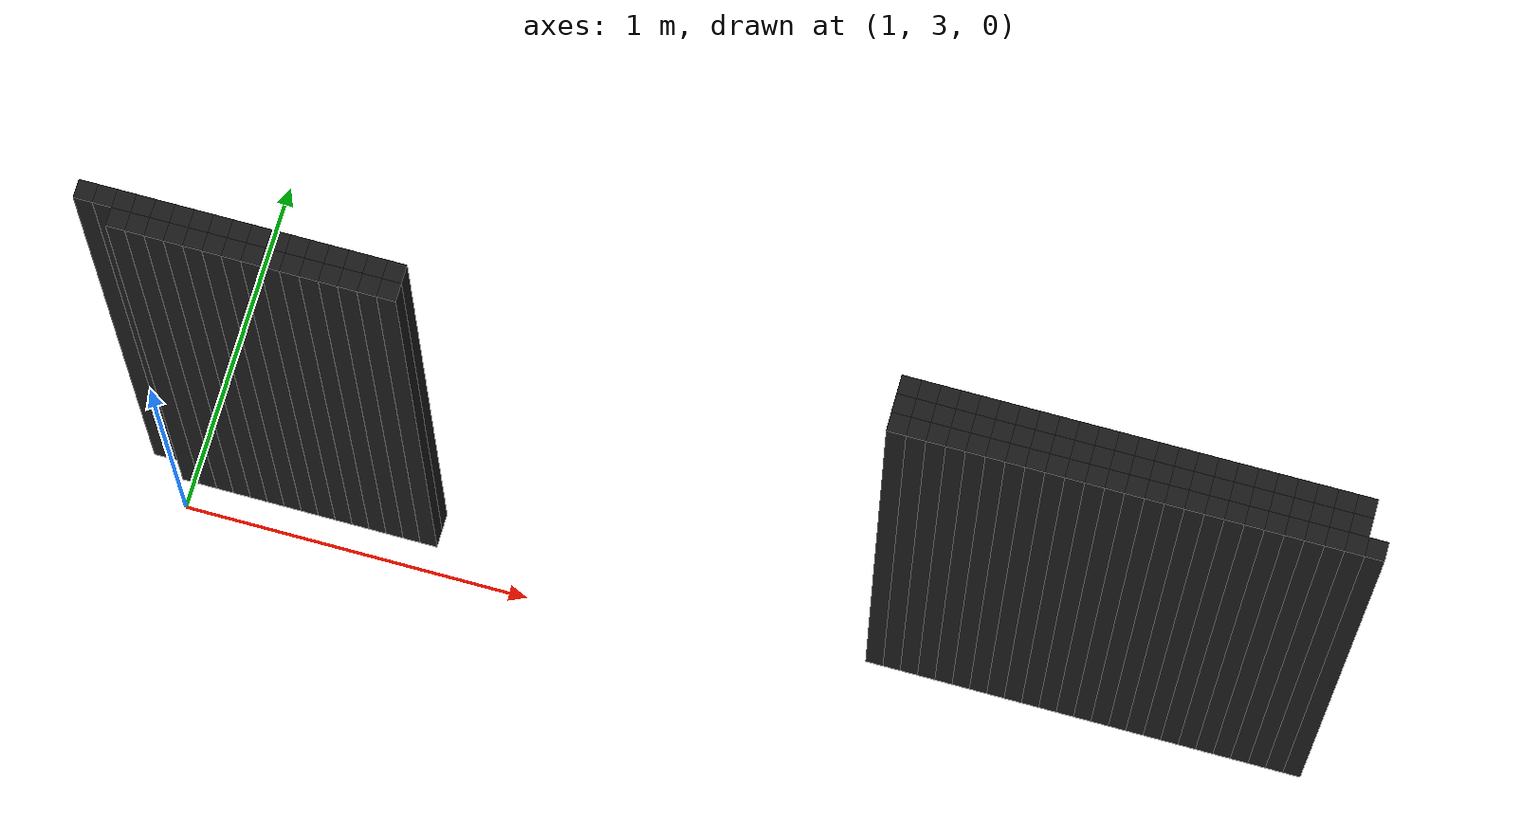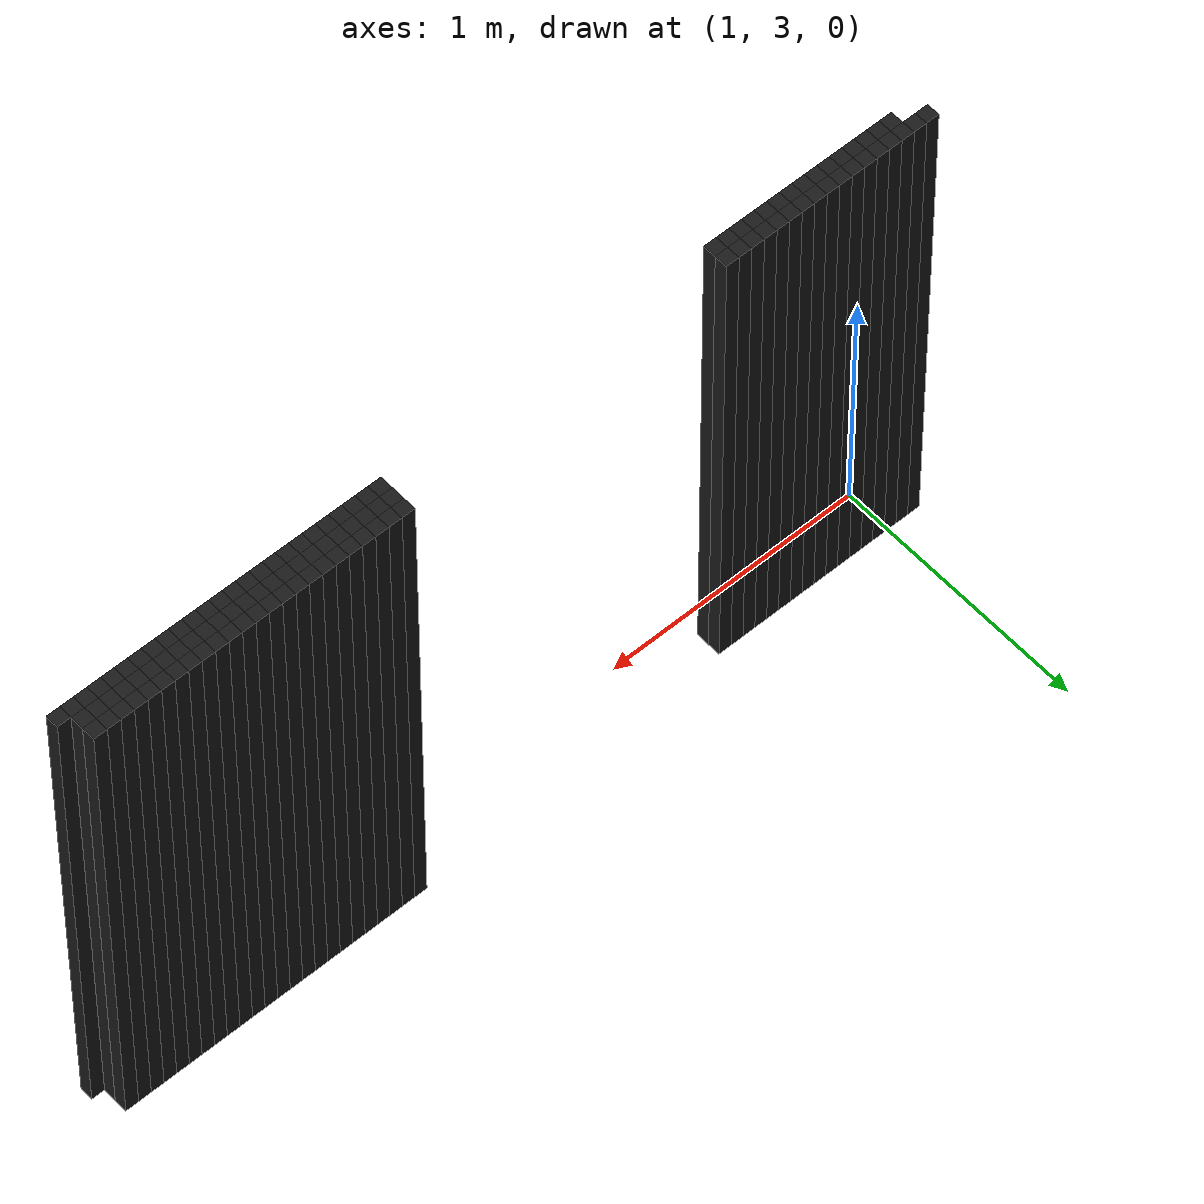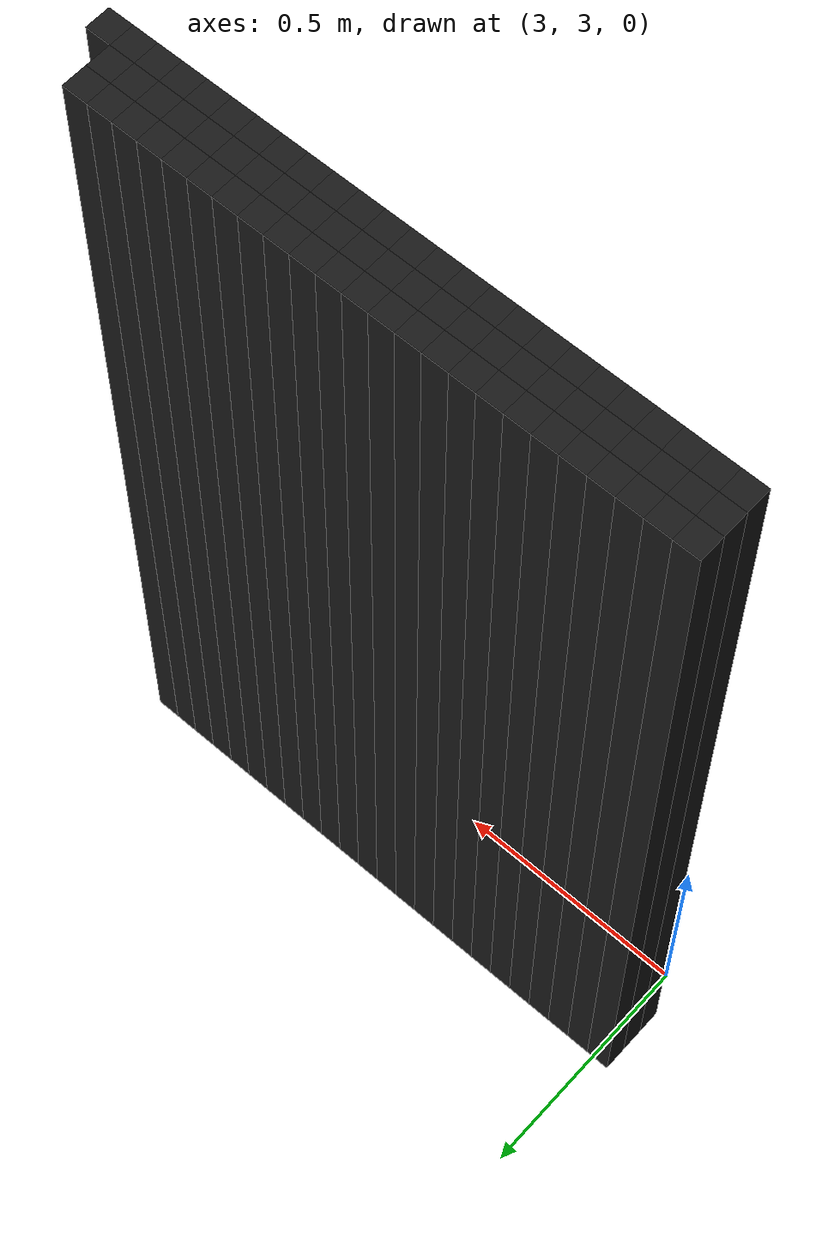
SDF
<sdf version="1.6">
 <model name="obstacle_150_103">
  <pose>2.99 3.2 1.0 0 0 0</pose>
  <static>true</static>
  <link name="box_link">
   <collision name="box_collision"><geometry><box><size>0.05 0.05 2.0</size></box></geometry></collision>
   <visual name="box_visual">
    <geometry><box><size>0.05 0.05 2.0</size></box></geometry>
    <material><ambient>0 0 0 1</ambient><diffuse>0.1 0.1 0.1 1</diffuse></material>
   </visual>
  </link>
 </model>
 <model name="obstacle_151_103">
  <pose>3.040000000000001 3.2 1.0 0 0 0</pose>
  <static>true</static>
  <link name="box_link">
   <collision name="box_collision"><geometry><box><size>0.05 0.05 2.0</size></box></geometry></collision>
   <visual name="box_visual">
    <geometry><box><size>0.05 0.05 2.0</size></box></geometry>
    <material><ambient>0 0 0 1</ambient><diffuse>0.1 0.1 0.1 1</diffuse></material>
   </visual>
  </link>
 </model>
 <model name="obstacle_152_103">
  <pose>3.0900000000000007 3.2 1.0 0 0 0</pose>
  <static>true</static>
  <link name="box_link">
   <collision name="box_collision"><geometry><box><size>0.05 0.05 2.0</size></box></geometry></collision>
   <visual name="box_visual">
    <geometry><box><size>0.05 0.05 2.0</size></box></geometry>
    <material><ambient>0 0 0 1</ambient><diffuse>0.1 0.1 0.1 1</diffuse></material>
   </visual>
  </link>
 </model>
 <model name="obstacle_153_103">
  <pose>3.1400000000000006 3.2 1.0 0 0 0</pose>
  <static>true</static>
  <link name="box_link">
   <collision name="box_collision"><geometry><box><size>0.05 0.05 2.0</size></box></geometry></collision>
   <visual name="box_visual">
    <geometry><box><size>0.05 0.05 2.0</size></box></geometry>
    <material><ambient>0 0 0 1</ambient><diffuse>0.1 0.1 0.1 1</diffuse></material>
   </visual>
  </link>
 </model>
 <model name="obstacle_154_103">
  <pose>3.1900000000000004 3.2 1.0 0 0 0</pose>
  <static>true</static>
  <link name="box_link">
   <collision name="box_collision"><geometry><box><size>0.05 0.05 2.0</size></box></geometry></collision>
   <visual name="box_visual">
    <geometry><box><size>0.05 0.05 2.0</size></box></geometry>
    <material><ambient>0 0 0 1</ambient><diffuse>0.1 0.1 0.1 1</diffuse></material>
   </visual>
  </link>
 </model>
 <model name="obstacle_155_103">
  <pose>3.24 3.2 1.0 0 0 0</pose>
  <static>true</static>
  <link name="box_link">
   <collision name="box_collision"><geometry><box><size>0.05 0.05 2.0</size></box></geometry></collision>
   <visual name="box_visual">
    <geometry><box><size>0.05 0.05 2.0</size></box></geometry>
    <material><ambient>0 0 0 1</ambient><diffuse>0.1 0.1 0.1 1</diffuse></material>
   </visual>
  </link>
 </model>
 <model name="obstacle_156_103">
  <pose>3.290000000000001 3.2 1.0 0 0 0</pose>
  <static>true</static>
  <link name="box_link">
   <collision name="box_collision"><geometry><box><size>0.05 0.05 2.0</size></box></geometry></collision>
   <visual name="box_visual">
    <geometry><box><size>0.05 0.05 2.0</size></box></geometry>
    <material><ambient>0 0 0 1</ambient><diffuse>0.1 0.1 0.1 1</diffuse></material>
   </visual>
  </link>
 </model>
 <model name="obstacle_157_103">
  <pose>3.3400000000000007 3.2 1.0 0 0 0</pose>
  <static>true</static>
  <link name="box_link">
   <collision name="box_collision"><geometry><box><size>0.05 0.05 2.0</size></box></geometry></collision>
   <visual name="box_visual">
    <geometry><box><size>0.05 0.05 2.0</size></box></geometry>
    <material><ambient>0 0 0 1</ambient><diffuse>0.1 0.1 0.1 1</diffuse></material>
   </visual>
  </link>
 </model>
 <model name="obstacle_158_103">
  <pose>3.3900000000000006 3.2 1.0 0 0 0</pose>
  <static>true</static>
  <link name="box_link">
   <collision name="box_collision"><geometry><box><size>0.05 0.05 2.0</size></box></geometry></collision>
   <visual name="box_visual">
    <geometry><box><size>0.05 0.05 2.0</size></box></geometry>
    <material><ambient>0 0 0 1</ambient><diffuse>0.1 0.1 0.1 1</diffuse></material>
   </visual>
  </link>
 </model>
 <model name="obstacle_159_103">
  <pose>3.4400000000000004 3.2 1.0 0 0 0</pose>
  <static>true</static>
  <link name="box_link">
   <collision name="box_collision"><geometry><box><size>0.05 0.05 2.0</size></box></geometry></collision>
   <visual name="box_visual">
    <geometry><box><size>0.05 0.05 2.0</size></box></geometry>
    <material><ambient>0 0 0 1</ambient><diffuse>0.1 0.1 0.1 1</diffuse></material>
   </visual>
  </link>
 </model>
 <model name="obstacle_160_103">
  <pose>3.49 3.2 1.0 0 0 0</pose>
  <static>true</static>
  <link name="box_link">
   <collision name="box_collision"><geometry><box><size>0.05 0.05 2.0</size></box></geometry></collision>
   <visual name="box_visual">
    <geometry><box><size>0.05 0.05 2.0</size></box></geometry>
    <material><ambient>0 0 0 1</ambient><diffuse>0.1 0.1 0.1 1</diffuse></material>
   </visual>
  </link>
 </model>
 <model name="obstacle_161_103">
  <pose>3.540000000000001 3.2 1.0 0 0 0</pose>
  <static>true</static>
  <link name="box_link">
   <collision name="box_collision"><geometry><box><size>0.05 0.05 2.0</size></box></geometry></collision>
   <visual name="box_visual">
    <geometry><box><size>0.05 0.05 2.0</size></box></geometry>
    <material><ambient>0 0 0 1</ambient><diffuse>0.1 0.1 0.1 1</diffuse></material>
   </visual>
  </link>
 </model>
 <model name="obstacle_162_103">
  <pose>3.59 3.2 1.0 0 0 0</pose>
  <static>true</static>
  <link name="box_link">
   <collision name="box_collision"><geometry><box><size>0.05 0.05 2.0</size></box></geometry></collision>
   <visual name="box_visual">
    <geometry><box><size>0.05 0.05 2.0</size></box></geometry>
    <material><ambient>0 0 0 1</ambient><diffuse>0.1 0.1 0.1 1</diffuse></material>
   </visual>
  </link>
 </model>
 <model name="obstacle_163_103">
  <pose>3.6400000000000006 3.2 1.0 0 0 0</pose>
  <static>true</static>
  <link name="box_link">
   <collision name="box_collision"><geometry><box><size>0.05 0.05 2.0</size></box></geometry></collision>
   <visual name="box_visual">
    <geometry><box><size>0.05 0.05 2.0</size></box></geometry>
    <material><ambient>0 0 0 1</ambient><diffuse>0.1 0.1 0.1 1</diffuse></material>
   </visual>
  </link>
 </model>
 <model name="obstacle_164_103">
  <pose>3.6900000000000013 3.2 1.0 0 0 0</pose>
  <static>true</static>
  <link name="box_link">
   <collision name="box_collision"><geometry><box><size>0.05 0.05 2.0</size></box></geometry></collision>
   <visual name="box_visual">
    <geometry><box><size>0.05 0.05 2.0</size></box></geometry>
    <material><ambient>0 0 0 1</ambient><diffuse>0.1 0.1 0.1 1</diffuse></material>
   </visual>
  </link>
 </model>
 <model name="obstacle_165_103">
  <pose>3.74 3.2 1.0 0 0 0</pose>
  <static>true</static>
  <link name="box_link">
   <collision name="box_collision"><geometry><box><size>0.05 0.05 2.0</size></box></geometry></collision>
   <visual name="box_visual">
    <geometry><box><size>0.05 0.05 2.0</size></box></geometry>
    <material><ambient>0 0 0 1</ambient><diffuse>0.1 0.1 0.1 1</diffuse></material>
   </visual>
  </link>
 </model>
 <model name="obstacle_166_103">
  <pose>3.790000000000001 3.2 1.0 0 0 0</pose>
  <static>true</static>
  <link name="box_link">
   <collision name="box_collision"><geometry><box><size>0.05 0.05 2.0</size></box></geometry></collision>
   <visual name="box_visual">
    <geometry><box><size>0.05 0.05 2.0</size></box></geometry>
    <material><ambient>0 0 0 1</ambient><diffuse>0.1 0.1 0.1 1</diffuse></material>
   </visual>
  </link>
 </model>
 <model name="obstacle_167_103">
  <pose>3.84 3.2 1.0 0 0 0</pose>
  <static>true</static>
  <link name="box_link">
   <collision name="box_collision"><geometry><box><size>0.05 0.05 2.0</size></box></geometry></collision>
   <visual name="box_visual">
    <geometry><box><size>0.05 0.05 2.0</size></box></geometry>
    <material><ambient>0 0 0 1</ambient><diffuse>0.1 0.1 0.1 1</diffuse></material>
   </visual>
  </link>
 </model>
 <model name="obstacle_168_103">
  <pose>3.8900000000000006 3.2 1.0 0 0 0</pose>
  <static>true</static>
  <link name="box_link">
   <collision name="box_collision"><geometry><box><size>0.05 0.05 2.0</size></box></geometry></collision>
   <visual name="box_visual">
    <geometry><box><size>0.05 0.05 2.0</size></box></geometry>
    <material><ambient>0 0 0 1</ambient><diffuse>0.1 0.1 0.1 1</diffuse></material>
   </visual>
  </link>
 </model>
 <model name="obstacle_169_103">
  <pose>3.9400000000000013 3.2 1.0 0 0 0</pose>
  <static>true</static>
  <link name="box_link">
   <collision name="box_collision"><geometry><box><size>0.05 0.05 2.0</size></box></geometry></collision>
   <visual name="box_visual">
    <geometry><box><size>0.05 0.05 2.0</size></box></geometry>
    <material><ambient>0 0 0 1</ambient><diffuse>0.1 0.1 0.1 1</diffuse></material>
   </visual>
  </link>
 </model>
 <model name="obstacle_170_103">
  <pose>3.99 3.2 1.0 0 0 0</pose>
  <static>true</static>
  <link name="box_link">
   <collision name="box_collision"><geometry><box><size>0.05 0.05 2.0</size></box></geometry></collision>
   <visual name="box_visual">
    <geometry><box><size>0.05 0.05 2.0</size></box></geometry>
    <material><ambient>0 0 0 1</ambient><diffuse>0.1 0.1 0.1 1</diffuse></material>
   </visual>
  </link>
 </model>
 <model name="obstacle_171_103">
  <pose>4.040000000000001 3.2 1.0 0 0 0</pose>
  <static>true</static>
  <link name="box_link">
   <collision name="box_collision"><geometry><box><size>0.05 0.05 2.0</size></box></geometry></collision>
   <visual name="box_visual">
    <geometry><box><size>0.05 0.05 2.0</size></box></geometry>
    <material><ambient>0 0 0 1</ambient><diffuse>0.1 0.1 0.1 1</diffuse></material>
   </visual>
  </link>
 </model>
 <model name="obstacle_172_103">
  <pose>4.09 3.2 1.0 0 0 0</pose>
  <static>true</static>
  <link name="box_link">
   <collision name="box_collision"><geometry><box><size>0.05 0.05 2.0</size></box></geometry></collision>
   <visual name="box_visual">
    <geometry><box><size>0.05 0.05 2.0</size></box></geometry>
    <material><ambient>0 0 0 1</ambient><diffuse>0.1 0.1 0.1 1</diffuse></material>
   </visual>
  </link>
 </model>
 <model name="obstacle_173_103">
  <pose>4.140000000000001 3.2 1.0 0 0 0</pose>
  <static>true</static>
  <link name="box_link">
   <collision name="box_collision"><geometry><box><size>0.05 0.05 2.0</size></box></geometry></collision>
   <visual name="box_visual">
    <geometry><box><size>0.05 0.05 2.0</size></box></geometry>
    <material><ambient>0 0 0 1</ambient><diffuse>0.1 0.1 0.1 1</diffuse></material>
   </visual>
  </link>
 </model>
 <model name="obstacle_108_104">
  <pose>0.8900000000000006 3.1500000000000004 1.0 0 0 0</pose>
  <static>true</static>
  <link name="box_link">
   <collision name="box_collision"><geometry><box><size>0.05 0.05 2.0</size></box></geometry></collision>
   <visual name="box_visual">
    <geometry><box><size>0.05 0.05 2.0</size></box></geometry>
    <material><ambient>0 0 0 1</ambient><diffuse>0.1 0.1 0.1 1</diffuse></material>
   </visual>
  </link>
 </model>
 <model name="obstacle_109_104">
  <pose>0.9400000000000004 3.1500000000000004 1.0 0 0 0</pose>
  <static>true</static>
  <link name="box_link">
   <collision name="box_collision"><geometry><box><size>0.05 0.05 2.0</size></box></geometry></collision>
   <visual name="box_visual">
    <geometry><box><size>0.05 0.05 2.0</size></box></geometry>
    <material><ambient>0 0 0 1</ambient><diffuse>0.1 0.1 0.1 1</diffuse></material>
   </visual>
  </link>
 </model>
 <model name="obstacle_110_104">
  <pose>0.9900000000000002 3.1500000000000004 1.0 0 0 0</pose>
  <static>true</static>
  <link name="box_link">
   <collision name="box_collision"><geometry><box><size>0.05 0.05 2.0</size></box></geometry></collision>
   <visual name="box_visual">
    <geometry><box><size>0.05 0.05 2.0</size></box></geometry>
    <material><ambient>0 0 0 1</ambient><diffuse>0.1 0.1 0.1 1</diffuse></material>
   </visual>
  </link>
 </model>
 <model name="obstacle_111_104">
  <pose>1.040000000000001 3.1500000000000004 1.0 0 0 0</pose>
  <static>true</static>
  <link name="box_link">
   <collision name="box_collision"><geometry><box><size>0.05 0.05 2.0</size></box></geometry></collision>
   <visual name="box_visual">
    <geometry><box><size>0.05 0.05 2.0</size></box></geometry>
    <material><ambient>0 0 0 1</ambient><diffuse>0.1 0.1 0.1 1</diffuse></material>
   </visual>
  </link>
 </model>
 <model name="obstacle_112_104">
  <pose>1.0900000000000007 3.1500000000000004 1.0 0 0 0</pose>
  <static>true</static>
  <link name="box_link">
   <collision name="box_collision"><geometry><box><size>0.05 0.05 2.0</size></box></geometry></collision>
   <visual name="box_visual">
    <geometry><box><size>0.05 0.05 2.0</size></box></geometry>
    <material><ambient>0 0 0 1</ambient><diffuse>0.1 0.1 0.1 1</diffuse></material>
   </visual>
  </link>
 </model>
 <model name="obstacle_113_104">
  <pose>1.1400000000000006 3.1500000000000004 1.0 0 0 0</pose>
  <static>true</static>
  <link name="box_link">
   <collision name="box_collision"><geometry><box><size>0.05 0.05 2.0</size></box></geometry></collision>
   <visual name="box_visual">
    <geometry><box><size>0.05 0.05 2.0</size></box></geometry>
    <material><ambient>0 0 0 1</ambient><diffuse>0.1 0.1 0.1 1</diffuse></material>
   </visual>
  </link>
 </model>
 <model name="obstacle_114_104">
  <pose>1.1900000000000004 3.1500000000000004 1.0 0 0 0</pose>
  <static>true</static>
  <link name="box_link">
   <collision name="box_collision"><geometry><box><size>0.05 0.05 2.0</size></box></geometry></collision>
   <visual name="box_visual">
    <geometry><box><size>0.05 0.05 2.0</size></box></geometry>
    <material><ambient>0 0 0 1</ambient><diffuse>0.1 0.1 0.1 1</diffuse></material>
   </visual>
  </link>
 </model>
 <model name="obstacle_115_104">
  <pose>1.2400000000000002 3.1500000000000004 1.0 0 0 0</pose>
  <static>true</static>
  <link name="box_link">
   <collision name="box_collision"><geometry><box><size>0.05 0.05 2.0</size></box></geometry></collision>
   <visual name="box_visual">
    <geometry><box><size>0.05 0.05 2.0</size></box></geometry>
    <material><ambient>0 0 0 1</ambient><diffuse>0.1 0.1 0.1 1</diffuse></material>
   </visual>
  </link>
 </model>
 <model name="obstacle_116_104">
  <pose>1.290000000000001 3.1500000000000004 1.0 0 0 0</pose>
  <static>true</static>
  <link name="box_link">
   <collision name="box_collision"><geometry><box><size>0.05 0.05 2.0</size></box></geometry></collision>
   <visual name="box_visual">
    <geometry><box><size>0.05 0.05 2.0</size></box></geometry>
    <material><ambient>0 0 0 1</ambient><diffuse>0.1 0.1 0.1 1</diffuse></material>
   </visual>
  </link>
 </model>
 <model name="obstacle_117_104">
  <pose>1.3400000000000007 3.1500000000000004 1.0 0 0 0</pose>
  <static>true</static>
  <link name="box_link">
   <collision name="box_collision"><geometry><box><size>0.05 0.05 2.0</size></box></geometry></collision>
   <visual name="box_visual">
    <geometry><box><size>0.05 0.05 2.0</size></box></geometry>
    <material><ambient>0 0 0 1</ambient><diffuse>0.1 0.1 0.1 1</diffuse></material>
   </visual>
  </link>
 </model>
 <model name="obstacle_118_104">
  <pose>1.3900000000000006 3.1500000000000004 1.0 0 0 0</pose>
  <static>true</static>
  <link name="box_link">
   <collision name="box_collision"><geometry><box><size>0.05 0.05 2.0</size></box></geometry></collision>
   <visual name="box_visual">
    <geometry><box><size>0.05 0.05 2.0</size></box></geometry>
    <material><ambient>0 0 0 1</ambient><diffuse>0.1 0.1 0.1 1</diffuse></material>
   </visual>
  </link>
 </model>
 <model name="obstacle_119_104">
  <pose>1.4400000000000004 3.1500000000000004 1.0 0 0 0</pose>
  <static>true</static>
  <link name="box_link">
   <collision name="box_collision"><geometry><box><size>0.05 0.05 2.0</size></box></geometry></collision>
   <visual name="box_visual">
    <geometry><box><size>0.05 0.05 2.0</size></box></geometry>
    <material><ambient>0 0 0 1</ambient><diffuse>0.1 0.1 0.1 1</diffuse></material>
   </visual>
  </link>
 </model>
 <model name="obstacle_120_104">
  <pose>1.4900000000000002 3.1500000000000004 1.0 0 0 0</pose>
  <static>true</static>
  <link name="box_link">
   <collision name="box_collision"><geometry><box><size>0.05 0.05 2.0</size></box></geometry></collision>
   <visual name="box_visual">
    <geometry><box><size>0.05 0.05 2.0</size></box></geometry>
    <material><ambient>0 0 0 1</ambient><diffuse>0.1 0.1 0.1 1</diffuse></material>
   </visual>
  </link>
 </model>
 <model name="obstacle_121_104">
  <pose>1.540000000000001 3.1500000000000004 1.0 0 0 0</pose>
  <static>true</static>
  <link name="box_link">
   <collision name="box_collision"><geometry><box><size>0.05 0.05 2.0</size></box></geometry></collision>
   <visual name="box_visual">
    <geometry><box><size>0.05 0.05 2.0</size></box></geometry>
    <material><ambient>0 0 0 1</ambient><diffuse>0.1 0.1 0.1 1</diffuse></material>
   </visual>
  </link>
 </model>
 <model name="obstacle_122_104">
  <pose>1.5900000000000007 3.1500000000000004 1.0 0 0 0</pose>
  <static>true</static>
  <link name="box_link">
   <collision name="box_collision"><geometry><box><size>0.05 0.05 2.0</size></box></geometry></collision>
   <visual name="box_visual">
    <geometry><box><size>0.05 0.05 2.0</size></box></geometry>
    <material><ambient>0 0 0 1</ambient><diffuse>0.1 0.1 0.1 1</diffuse></material>
   </visual>
  </link>
 </model>
 <model name="obstacle_123_104">
  <pose>1.6400000000000006 3.1500000000000004 1.0 0 0 0</pose>
  <static>true</static>
  <link name="box_link">
   <collision name="box_collision"><geometry><box><size>0.05 0.05 2.0</size></box></geometry></collision>
   <visual name="box_visual">
    <geometry><box><size>0.05 0.05 2.0</size></box></geometry>
    <material><ambient>0 0 0 1</ambient><diffuse>0.1 0.1 0.1 1</diffuse></material>
   </visual>
  </link>
 </model>
 <model name="obstacle_124_104">
  <pose>1.6900000000000004 3.1500000000000004 1.0 0 0 0</pose>
  <static>true</static>
  <link name="box_link">
   <collision name="box_collision"><geometry><box><size>0.05 0.05 2.0</size></box></geometry></collision>
   <visual name="box_visual">
    <geometry><box><size>0.05 0.05 2.0</size></box></geometry>
    <material><ambient>0 0 0 1</ambient><diffuse>0.1 0.1 0.1 1</diffuse></material>
   </visual>
  </link>
 </model>
 <model name="obstacle_150_104">
  <pose>2.99 3.1500000000000004 1.0 0 0 0</pose>
  <static>true</static>
  <link name="box_link">
   <collision name="box_collision"><geometry><box><size>0.05 0.05 2.0</size></box></geometry></collision>
   <visual name="box_visual">
    <geometry><box><size>0.05 0.05 2.0</size></box></geometry>
    <material><ambient>0 0 0 1</ambient><diffuse>0.1 0.1 0.1 1</diffuse></material>
   </visual>
  </link>
 </model>
 <model name="obstacle_151_104">
  <pose>3.040000000000001 3.1500000000000004 1.0 0 0 0</pose>
  <static>true</static>
  <link name="box_link">
   <collision name="box_collision"><geometry><box><size>0.05 0.05 2.0</size></box></geometry></collision>
   <visual name="box_visual">
    <geometry><box><size>0.05 0.05 2.0</size></box></geometry>
    <material><ambient>0 0 0 1</ambient><diffuse>0.1 0.1 0.1 1</diffuse></material>
   </visual>
  </link>
 </model>
 <model name="obstacle_152_104">
  <pose>3.0900000000000007 3.1500000000000004 1.0 0 0 0</pose>
  <static>true</static>
  <link name="box_link">
   <collision name="box_collision"><geometry><box><size>0.05 0.05 2.0</size></box></geometry></collision>
   <visual name="box_visual">
    <geometry><box><size>0.05 0.05 2.0</size></box></geometry>
    <material><ambient>0 0 0 1</ambient><diffuse>0.1 0.1 0.1 1</diffuse></material>
   </visual>
  </link>
 </model>
 <model name="obstacle_153_104">
  <pose>3.1400000000000006 3.1500000000000004 1.0 0 0 0</pose>
  <static>true</static>
  <link name="box_link">
   <collision name="box_collision"><geometry><box><size>0.05 0.05 2.0</size></box></geometry></collision>
   <visual name="box_visual">
    <geometry><box><size>0.05 0.05 2.0</size></box></geometry>
    <material><ambient>0 0 0 1</ambient><diffuse>0.1 0.1 0.1 1</diffuse></material>
   </visual>
  </link>
 </model>
 <model name="obstacle_154_104">
  <pose>3.1900000000000004 3.1500000000000004 1.0 0 0 0</pose>
  <static>true</static>
  <link name="box_link">
   <collision name="box_collision"><geometry><box><size>0.05 0.05 2.0</size></box></geometry></collision>
   <visual name="box_visual">
    <geometry><box><size>0.05 0.05 2.0</size></box></geometry>
    <material><ambient>0 0 0 1</ambient><diffuse>0.1 0.1 0.1 1</diffuse></material>
   </visual>
  </link>
 </model>
 <model name="obstacle_155_104">
  <pose>3.24 3.1500000000000004 1.0 0 0 0</pose>
  <static>true</static>
  <link name="box_link">
   <collision name="box_collision"><geometry><box><size>0.05 0.05 2.0</size></box></geometry></collision>
   <visual name="box_visual">
    <geometry><box><size>0.05 0.05 2.0</size></box></geometry>
    <material><ambient>0 0 0 1</ambient><diffuse>0.1 0.1 0.1 1</diffuse></material>
   </visual>
  </link>
 </model>
 <model name="obstacle_156_104">
  <pose>3.290000000000001 3.1500000000000004 1.0 0 0 0</pose>
  <static>true</static>
  <link name="box_link">
   <collision name="box_collision"><geometry><box><size>0.05 0.05 2.0</size></box></geometry></collision>
   <visual name="box_visual">
    <geometry><box><size>0.05 0.05 2.0</size></box></geometry>
    <material><ambient>0 0 0 1</ambient><diffuse>0.1 0.1 0.1 1</diffuse></material>
   </visual>
  </link>
 </model>
 <model name="obstacle_157_104">
  <pose>3.3400000000000007 3.1500000000000004 1.0 0 0 0</pose>
  <static>true</static>
  <link name="box_link">
   <collision name="box_collision"><geometry><box><size>0.05 0.05 2.0</size></box></geometry></collision>
   <visual name="box_visual">
    <geometry><box><size>0.05 0.05 2.0</size></box></geometry>
    <material><ambient>0 0 0 1</ambient><diffuse>0.1 0.1 0.1 1</diffuse></material>
   </visual>
  </link>
 </model>
 <model name="obstacle_158_104">
  <pose>3.3900000000000006 3.1500000000000004 1.0 0 0 0</pose>
  <static>true</static>
  <link name="box_link">
   <collision name="box_collision"><geometry><box><size>0.05 0.05 2.0</size></box></geometry></collision>
   <visual name="box_visual">
    <geometry><box><size>0.05 0.05 2.0</size></box></geometry>
    <material><ambient>0 0 0 1</ambient><diffuse>0.1 0.1 0.1 1</diffuse></material>
   </visual>
  </link>
 </model>
 <model name="obstacle_159_104">
  <pose>3.4400000000000004 3.1500000000000004 1.0 0 0 0</pose>
  <static>true</static>
  <link name="box_link">
   <collision name="box_collision"><geometry><box><size>0.05 0.05 2.0</size></box></geometry></collision>
   <visual name="box_visual">
    <geometry><box><size>0.05 0.05 2.0</size></box></geometry>
    <material><ambient>0 0 0 1</ambient><diffuse>0.1 0.1 0.1 1</diffuse></material>
   </visual>
  </link>
 </model>
 <model name="obstacle_160_104">
  <pose>3.49 3.1500000000000004 1.0 0 0 0</pose>
  <static>true</static>
  <link name="box_link">
   <collision name="box_collision"><geometry><box><size>0.05 0.05 2.0</size></box></geometry></collision>
   <visual name="box_visual">
    <geometry><box><size>0.05 0.05 2.0</size></box></geometry>
    <material><ambient>0 0 0 1</ambient><diffuse>0.1 0.1 0.1 1</diffuse></material>
   </visual>
  </link>
 </model>
 <model name="obstacle_161_104">
  <pose>3.540000000000001 3.1500000000000004 1.0 0 0 0</pose>
  <static>true</static>
  <link name="box_link">
   <collision name="box_collision"><geometry><box><size>0.05 0.05 2.0</size></box></geometry></collision>
   <visual name="box_visual">
    <geometry><box><size>0.05 0.05 2.0</size></box></geometry>
    <material><ambient>0 0 0 1</ambient><diffuse>0.1 0.1 0.1 1</diffuse></material>
   </visual>
  </link>
 </model>
 <model name="obstacle_162_104">
  <pose>3.59 3.1500000000000004 1.0 0 0 0</pose>
  <static>true</static>
  <link name="box_link">
   <collision name="box_collision"><geometry><box><size>0.05 0.05 2.0</size></box></geometry></collision>
   <visual name="box_visual">
    <geometry><box><size>0.05 0.05 2.0</size></box></geometry>
    <material><ambient>0 0 0 1</ambient><diffuse>0.1 0.1 0.1 1</diffuse></material>
   </visual>
  </link>
 </model>
 <model name="obstacle_163_104">
  <pose>3.6400000000000006 3.1500000000000004 1.0 0 0 0</pose>
  <static>true</static>
  <link name="box_link">
   <collision name="box_collision"><geometry><box><size>0.05 0.05 2.0</size></box></geometry></collision>
   <visual name="box_visual">
    <geometry><box><size>0.05 0.05 2.0</size></box></geometry>
    <material><ambient>0 0 0 1</ambient><diffuse>0.1 0.1 0.1 1</diffuse></material>
   </visual>
  </link>
 </model>
 <model name="obstacle_164_104">
  <pose>3.6900000000000013 3.1500000000000004 1.0 0 0 0</pose>
  <static>true</static>
  <link name="box_link">
   <collision name="box_collision"><geometry><box><size>0.05 0.05 2.0</size></box></geometry></collision>
   <visual name="box_visual">
    <geometry><box><size>0.05 0.05 2.0</size></box></geometry>
    <material><ambient>0 0 0 1</ambient><diffuse>0.1 0.1 0.1 1</diffuse></material>
   </visual>
  </link>
 </model>
 <model name="obstacle_165_104">
  <pose>3.74 3.1500000000000004 1.0 0 0 0</pose>
  <static>true</static>
  <link name="box_link">
   <collision name="box_collision"><geometry><box><size>0.05 0.05 2.0</size></box></geometry></collision>
   <visual name="box_visual">
    <geometry><box><size>0.05 0.05 2.0</size></box></geometry>
    <material><ambient>0 0 0 1</ambient><diffuse>0.1 0.1 0.1 1</diffuse></material>
   </visual>
  </link>
 </model>
 <model name="obstacle_166_104">
  <pose>3.790000000000001 3.1500000000000004 1.0 0 0 0</pose>
  <static>true</static>
  <link name="box_link">
   <collision name="box_collision"><geometry><box><size>0.05 0.05 2.0</size></box></geometry></collision>
   <visual name="box_visual">
    <geometry><box><size>0.05 0.05 2.0</size></box></geometry>
    <material><ambient>0 0 0 1</ambient><diffuse>0.1 0.1 0.1 1</diffuse></material>
   </visual>
  </link>
 </model>
 <model name="obstacle_167_104">
  <pose>3.84 3.1500000000000004 1.0 0 0 0</pose>
  <static>true</static>
  <link name="box_link">
   <collision name="box_collision"><geometry><box><size>0.05 0.05 2.0</size></box></geometry></collision>
   <visual name="box_visual">
    <geometry><box><size>0.05 0.05 2.0</size></box></geometry>
    <material><ambient>0 0 0 1</ambient><diffuse>0.1 0.1 0.1 1</diffuse></material>
   </visual>
  </link>
 </model>
 <model name="obstacle_168_104">
  <pose>3.8900000000000006 3.1500000000000004 1.0 0 0 0</pose>
  <static>true</static>
  <link name="box_link">
   <collision name="box_collision"><geometry><box><size>0.05 0.05 2.0</size></box></geometry></collision>
   <visual name="box_visual">
    <geometry><box><size>0.05 0.05 2.0</size></box></geometry>
    <material><ambient>0 0 0 1</ambient><diffuse>0.1 0.1 0.1 1</diffuse></material>
   </visual>
  </link>
 </model>
 <model name="obstacle_169_104">
  <pose>3.9400000000000013 3.1500000000000004 1.0 0 0 0</pose>
  <static>true</static>
  <link name="box_link">
   <collision name="box_collision"><geometry><box><size>0.05 0.05 2.0</size></box></geometry></collision>
   <visual name="box_visual">
    <geometry><box><size>0.05 0.05 2.0</size></box></geometry>
    <material><ambient>0 0 0 1</ambient><diffuse>0.1 0.1 0.1 1</diffuse></material>
   </visual>
  </link>
 </model>
 <model name="obstacle_170_104">
  <pose>3.99 3.1500000000000004 1.0 0 0 0</pose>
  <static>true</static>
  <link name="box_link">
   <collision name="box_collision"><geometry><box><size>0.05 0.05 2.0</size></box></geometry></collision>
   <visual name="box_visual">
    <geometry><box><size>0.05 0.05 2.0</size></box></geometry>
    <material><ambient>0 0 0 1</ambient><diffuse>0.1 0.1 0.1 1</diffuse></material>
   </visual>
  </link>
 </model>
 <model name="obstacle_171_104">
  <pose>4.040000000000001 3.1500000000000004 1.0 0 0 0</pose>
  <static>true</static>
  <link name="box_link">
   <collision name="box_collision"><geometry><box><size>0.05 0.05 2.0</size></box></geometry></collision>
   <visual name="box_visual">
    <geometry><box><size>0.05 0.05 2.0</size></box></geometry>
    <material><ambient>0 0 0 1</ambient><diffuse>0.1 0.1 0.1 1</diffuse></material>
   </visual>
  </link>
 </model>
 <model name="obstacle_172_104">
  <pose>4.09 3.1500000000000004 1.0 0 0 0</pose>
  <static>true</static>
  <link name="box_link">
   <collision name="box_collision"><geometry><box><size>0.05 0.05 2.0</size></box></geometry></collision>
   <visual name="box_visual">
    <geometry><box><size>0.05 0.05 2.0</size></box></geometry>
    <material><ambient>0 0 0 1</ambient><diffuse>0.1 0.1 0.1 1</diffuse></material>
   </visual>
  </link>
 </model>
 <model name="obstacle_173_104">
  <pose>4.140000000000001 3.1500000000000004 1.0 0 0 0</pose>
  <static>true</static>
  <link name="box_link">
   <collision name="box_collision"><geometry><box><size>0.05 0.05 2.0</size></box></geometry></collision>
   <visual name="box_visual">
    <geometry><box><size>0.05 0.05 2.0</size></box></geometry>
    <material><ambient>0 0 0 1</ambient><diffuse>0.1 0.1 0.1 1</diffuse></material>
   </visual>
  </link>
 </model>
 <model name="obstacle_110_105">
  <pose>0.9900000000000002 3.1000000000000005 1.0 0 0 0</pose>
  <static>true</static>
  <link name="box_link">
   <collision name="box_collision"><geometry><box><size>0.05 0.05 2.0</size></box></geometry></collision>
   <visual name="box_visual">
    <geometry><box><size>0.05 0.05 2.0</size></box></geometry>
    <material><ambient>0 0 0 1</ambient><diffuse>0.1 0.1 0.1 1</diffuse></material>
   </visual>
  </link>
 </model>
 <model name="obstacle_111_105">
  <pose>1.040000000000001 3.1000000000000005 1.0 0 0 0</pose>
  <static>true</static>
  <link name="box_link">
   <collision name="box_collision"><geometry><box><size>0.05 0.05 2.0</size></box></geometry></collision>
   <visual name="box_visual">
    <geometry><box><size>0.05 0.05 2.0</size></box></geometry>
    <material><ambient>0 0 0 1</ambient><diffuse>0.1 0.1 0.1 1</diffuse></material>
   </visual>
  </link>
 </model>
 <model name="obstacle_112_105">
  <pose>1.0900000000000007 3.1000000000000005 1.0 0 0 0</pose>
  <static>true</static>
  <link name="box_link">
   <collision name="box_collision"><geometry><box><size>0.05 0.05 2.0</size></box></geometry></collision>
   <visual name="box_visual">
    <geometry><box><size>0.05 0.05 2.0</size></box></geometry>
    <material><ambient>0 0 0 1</ambient><diffuse>0.1 0.1 0.1 1</diffuse></material>
   </visual>
  </link>
 </model>
 <model name="obstacle_113_105">
  <pose>1.1400000000000006 3.1000000000000005 1.0 0 0 0</pose>
  <static>true</static>
  <link name="box_link">
   <collision name="box_collision"><geometry><box><size>0.05 0.05 2.0</size></box></geometry></collision>
   <visual name="box_visual">
    <geometry><box><size>0.05 0.05 2.0</size></box></geometry>
    <material><ambient>0 0 0 1</ambient><diffuse>0.1 0.1 0.1 1</diffuse></material>
   </visual>
  </link>
 </model>
 <model name="obstacle_114_105">
  <pose>1.1900000000000004 3.1000000000000005 1.0 0 0 0</pose>
  <static>true</static>
  <link name="box_link">
   <collision name="box_collision"><geometry><box><size>0.05 0.05 2.0</size></box></geometry></collision>
   <visual name="box_visual">
    <geometry><box><size>0.05 0.05 2.0</size></box></geometry>
    <material><ambient>0 0 0 1</ambient><diffuse>0.1 0.1 0.1 1</diffuse></material>
   </visual>
  </link>
 </model>
 <model name="obstacle_115_105">
  <pose>1.2400000000000002 3.1000000000000005 1.0 0 0 0</pose>
  <static>true</static>
  <link name="box_link">
   <collision name="box_collision"><geometry><box><size>0.05 0.05 2.0</size></box></geometry></collision>
   <visual name="box_visual">
    <geometry><box><size>0.05 0.05 2.0</size></box></geometry>
    <material><ambient>0 0 0 1</ambient><diffuse>0.1 0.1 0.1 1</diffuse></material>
   </visual>
  </link>
 </model>
 <model name="obstacle_116_105">
  <pose>1.290000000000001 3.1000000000000005 1.0 0 0 0</pose>
  <static>true</static>
  <link name="box_link">
   <collision name="box_collision"><geometry><box><size>0.05 0.05 2.0</size></box></geometry></collision>
   <visual name="box_visual">
    <geometry><box><size>0.05 0.05 2.0</size></box></geometry>
    <material><ambient>0 0 0 1</ambient><diffuse>0.1 0.1 0.1 1</diffuse></material>
   </visual>
  </link>
 </model>
 <model name="obstacle_117_105">
  <pose>1.3400000000000007 3.1000000000000005 1.0 0 0 0</pose>
  <static>true</static>
  <link name="box_link">
   <collision name="box_collision"><geometry><box><size>0.05 0.05 2.0</size></box></geometry></collision>
   <visual name="box_visual">
    <geometry><box><size>0.05 0.05 2.0</size></box></geometry>
    <material><ambient>0 0 0 1</ambient><diffuse>0.1 0.1 0.1 1</diffuse></material>
   </visual>
  </link>
 </model>
 <model name="obstacle_118_105">
  <pose>1.3900000000000006 3.1000000000000005 1.0 0 0 0</pose>
  <static>true</static>
  <link name="box_link">
   <collision name="box_collision"><geometry><box><size>0.05 0.05 2.0</size></box></geometry></collision>
   <visual name="box_visual">
    <geometry><box><size>0.05 0.05 2.0</size></box></geometry>
    <material><ambient>0 0 0 1</ambient><diffuse>0.1 0.1 0.1 1</diffuse></material>
   </visual>
  </link>
 </model>
 <model name="obstacle_119_105">
  <pose>1.4400000000000004 3.1000000000000005 1.0 0 0 0</pose>
  <static>true</static>
  <link name="box_link">
   <collision name="box_collision"><geometry><box><size>0.05 0.05 2.0</size></box></geometry></collision>
   <visual name="box_visual">
    <geometry><box><size>0.05 0.05 2.0</size></box></geometry>
    <material><ambient>0 0 0 1</ambient><diffuse>0.1 0.1 0.1 1</diffuse></material>
   </visual>
  </link>
 </model>
 <model name="obstacle_120_105">
  <pose>1.4900000000000002 3.1000000000000005 1.0 0 0 0</pose>
  <static>true</static>
  <link name="box_link">
   <collision name="box_collision"><geometry><box><size>0.05 0.05 2.0</size></box></geometry></collision>
   <visual name="box_visual">
    <geometry><box><size>0.05 0.05 2.0</size></box></geometry>
    <material><ambient>0 0 0 1</ambient><diffuse>0.1 0.1 0.1 1</diffuse></material>
   </visual>
  </link>
 </model>
 <model name="obstacle_121_105">
  <pose>1.540000000000001 3.1000000000000005 1.0 0 0 0</pose>
  <static>true</static>
  <link name="box_link">
   <collision name="box_collision"><geometry><box><size>0.05 0.05 2.0</size></box></geometry></collision>
   <visual name="box_visual">
    <geometry><box><size>0.05 0.05 2.0</size></box></geometry>
    <material><ambient>0 0 0 1</ambient><diffuse>0.1 0.1 0.1 1</diffuse></material>
   </visual>
  </link>
 </model>
 <model name="obstacle_122_105">
  <pose>1.5900000000000007 3.1000000000000005 1.0 0 0 0</pose>
  <static>true</static>
  <link name="box_link">
   <collision name="box_collision"><geometry><box><size>0.05 0.05 2.0</size></box></geometry></collision>
   <visual name="box_visual">
    <geometry><box><size>0.05 0.05 2.0</size></box></geometry>
    <material><ambient>0 0 0 1</ambient><diffuse>0.1 0.1 0.1 1</diffuse></material>
   </visual>
  </link>
 </model>
 <model name="obstacle_123_105">
  <pose>1.6400000000000006 3.1000000000000005 1.0 0 0 0</pose>
  <static>true</static>
  <link name="box_link">
   <collision name="box_collision"><geometry><box><size>0.05 0.05 2.0</size></box></geometry></collision>
   <visual name="box_visual">
    <geometry><box><size>0.05 0.05 2.0</size></box></geometry>
    <material><ambient>0 0 0 1</ambient><diffuse>0.1 0.1 0.1 1</diffuse></material>
   </visual>
  </link>
 </model>
 <model name="obstacle_124_105">
  <pose>1.6900000000000004 3.1000000000000005 1.0 0 0 0</pose>
  <static>true</static>
  <link name="box_link">
   <collision name="box_collision"><geometry><box><size>0.05 0.05 2.0</size></box></geometry></collision>
   <visual name="box_visual">
    <geometry><box><size>0.05 0.05 2.0</size></box></geometry>
    <material><ambient>0 0 0 1</ambient><diffuse>0.1 0.1 0.1 1</diffuse></material>
   </visual>
  </link>
 </model>
 <model name="obstacle_150_105">
  <pose>2.99 3.1000000000000005 1.0 0 0 0</pose>
  <static>true</static>
  <link name="box_link">
   <collision name="box_collision"><geometry><box><size>0.05 0.05 2.0</size></box></geometry></collision>
   <visual name="box_visual">
    <geometry><box><size>0.05 0.05 2.0</size></box></geometry>
    <material><ambient>0 0 0 1</ambient><diffuse>0.1 0.1 0.1 1</diffuse></material>
   </visual>
  </link>
 </model>
 <model name="obstacle_151_105">
  <pose>3.040000000000001 3.1000000000000005 1.0 0 0 0</pose>
  <static>true</static>
  <link name="box_link">
   <collision name="box_collision"><geometry><box><size>0.05 0.05 2.0</size></box></geometry></collision>
   <visual name="box_visual">
    <geometry><box><size>0.05 0.05 2.0</size></box></geometry>
    <material><ambient>0 0 0 1</ambient><diffuse>0.1 0.1 0.1 1</diffuse></material>
   </visual>
  </link>
 </model>
 <model name="obstacle_152_105">
  <pose>3.0900000000000007 3.1000000000000005 1.0 0 0 0</pose>
  <static>true</static>
  <link name="box_link">
   <collision name="box_collision"><geometry><box><size>0.05 0.05 2.0</size></box></geometry></collision>
   <visual name="box_visual">
    <geometry><box><size>0.05 0.05 2.0</size></box></geometry>
    <material><ambient>0 0 0 1</ambient><diffuse>0.1 0.1 0.1 1</diffuse></material>
   </visual>
  </link>
 </model>
 <model name="obstacle_153_105">
  <pose>3.1400000000000006 3.1000000000000005 1.0 0 0 0</pose>
  <static>true</static>
  <link name="box_link">
   <collision name="box_collision"><geometry><box><size>0.05 0.05 2.0</size></box></geometry></collision>
   <visual name="box_visual">
    <geometry><box><size>0.05 0.05 2.0</size></box></geometry>
    <material><ambient>0 0 0 1</ambient><diffuse>0.1 0.1 0.1 1</diffuse></material>
   </visual>
  </link>
 </model>
 <model name="obstacle_154_105">
  <pose>3.1900000000000004 3.1000000000000005 1.0 0 0 0</pose>
  <static>true</static>
  <link name="box_link">
   <collision name="box_collision"><geometry><box><size>0.05 0.05 2.0</size></box></geometry></collision>
   <visual name="box_visual">
    <geometry><box><size>0.05 0.05 2.0</size></box></geometry>
    <material><ambient>0 0 0 1</ambient><diffuse>0.1 0.1 0.1 1</diffuse></material>
   </visual>
  </link>
 </model>
 <model name="obstacle_155_105">
  <pose>3.24 3.1000000000000005 1.0 0 0 0</pose>
  <static>true</static>
  <link name="box_link">
   <collision name="box_collision"><geometry><box><size>0.05 0.05 2.0</size></box></geometry></collision>
   <visual name="box_visual">
    <geometry><box><size>0.05 0.05 2.0</size></box></geometry>
    <material><ambient>0 0 0 1</ambient><diffuse>0.1 0.1 0.1 1</diffuse></material>
   </visual>
  </link>
 </model>
 <model name="obstacle_156_105">
  <pose>3.290000000000001 3.1000000000000005 1.0 0 0 0</pose>
  <static>true</static>
  <link name="box_link">
   <collision name="box_collision"><geometry><box><size>0.05 0.05 2.0</size></box></geometry></collision>
   <visual name="box_visual">
    <geometry><box><size>0.05 0.05 2.0</size></box></geometry>
    <material><ambient>0 0 0 1</ambient><diffuse>0.1 0.1 0.1 1</diffuse></material>
   </visual>
  </link>
 </model>
 <model name="obstacle_157_105">
  <pose>3.3400000000000007 3.1000000000000005 1.0 0 0 0</pose>
  <static>true</static>
  <link name="box_link">
   <collision name="box_collision"><geometry><box><size>0.05 0.05 2.0</size></box></geometry></collision>
   <visual name="box_visual">
    <geometry><box><size>0.05 0.05 2.0</size></box></geometry>
    <material><ambient>0 0 0 1</ambient><diffuse>0.1 0.1 0.1 1</diffuse></material>
   </visual>
  </link>
 </model>
 <model name="obstacle_158_105">
  <pose>3.3900000000000006 3.1000000000000005 1.0 0 0 0</pose>
  <static>true</static>
  <link name="box_link">
   <collision name="box_collision"><geometry><box><size>0.05 0.05 2.0</size></box></geometry></collision>
   <visual name="box_visual">
    <geometry><box><size>0.05 0.05 2.0</size></box></geometry>
    <material><ambient>0 0 0 1</ambient><diffuse>0.1 0.1 0.1 1</diffuse></material>
   </visual>
  </link>
 </model>
 <model name="obstacle_159_105">
  <pose>3.4400000000000004 3.1000000000000005 1.0 0 0 0</pose>
  <static>true</static>
  <link name="box_link">
   <collision name="box_collision"><geometry><box><size>0.05 0.05 2.0</size></box></geometry></collision>
   <visual name="box_visual">
    <geometry><box><size>0.05 0.05 2.0</size></box></geometry>
    <material><ambient>0 0 0 1</ambient><diffuse>0.1 0.1 0.1 1</diffuse></material>
   </visual>
  </link>
 </model>
 <model name="obstacle_160_105">
  <pose>3.49 3.1000000000000005 1.0 0 0 0</pose>
  <static>true</static>
  <link name="box_link">
   <collision name="box_collision"><geometry><box><size>0.05 0.05 2.0</size></box></geometry></collision>
   <visual name="box_visual">
    <geometry><box><size>0.05 0.05 2.0</size></box></geometry>
    <material><ambient>0 0 0 1</ambient><diffuse>0.1 0.1 0.1 1</diffuse></material>
   </visual>
  </link>
 </model>
 <model name="obstacle_161_105">
  <pose>3.540000000000001 3.1000000000000005 1.0 0 0 0</pose>
  <static>true</static>
  <link name="box_link">
   <collision name="box_collision"><geometry><box><size>0.05 0.05 2.0</size></box></geometry></collision>
   <visual name="box_visual">
    <geometry><box><size>0.05 0.05 2.0</size></box></geometry>
    <material><ambient>0 0 0 1</ambient><diffuse>0.1 0.1 0.1 1</diffuse></material>
   </visual>
  </link>
 </model>
 <model name="obstacle_162_105">
  <pose>3.59 3.1000000000000005 1.0 0 0 0</pose>
  <static>true</static>
  <link name="box_link">
   <collision name="box_collision"><geometry><box><size>0.05 0.05 2.0</size></box></geometry></collision>
   <visual name="box_visual">
    <geometry><box><size>0.05 0.05 2.0</size></box></geometry>
    <material><ambient>0 0 0 1</ambient><diffuse>0.1 0.1 0.1 1</diffuse></material>
   </visual>
  </link>
 </model>
 <model name="obstacle_163_105">
  <pose>3.6400000000000006 3.1000000000000005 1.0 0 0 0</pose>
  <static>true</static>
  <link name="box_link">
   <collision name="box_collision"><geometry><box><size>0.05 0.05 2.0</size></box></geometry></collision>
   <visual name="box_visual">
    <geometry><box><size>0.05 0.05 2.0</size></box></geometry>
    <material><ambient>0 0 0 1</ambient><diffuse>0.1 0.1 0.1 1</diffuse></material>
   </visual>
  </link>
 </model>
 <model name="obstacle_164_105">
  <pose>3.6900000000000013 3.1000000000000005 1.0 0 0 0</pose>
  <static>true</static>
  <link name="box_link">
   <collision name="box_collision"><geometry><box><size>0.05 0.05 2.0</size></box></geometry></collision>
   <visual name="box_visual">
    <geometry><box><size>0.05 0.05 2.0</size></box></geometry>
    <material><ambient>0 0 0 1</ambient><diffuse>0.1 0.1 0.1 1</diffuse></material>
   </visual>
  </link>
 </model>
 <model name="obstacle_165_105">
  <pose>3.74 3.1000000000000005 1.0 0 0 0</pose>
  <static>true</static>
  <link name="box_link">
   <collision name="box_collision"><geometry><box><size>0.05 0.05 2.0</size></box></geometry></collision>
   <visual name="box_visual">
    <geometry><box><size>0.05 0.05 2.0</size></box></geometry>
    <material><ambient>0 0 0 1</ambient><diffuse>0.1 0.1 0.1 1</diffuse></material>
   </visual>
  </link>
 </model>
 <model name="obstacle_166_105">
  <pose>3.790000000000001 3.1000000000000005 1.0 0 0 0</pose>
  <static>true</static>
  <link name="box_link">
   <collision name="box_collision"><geometry><box><size>0.05 0.05 2.0</size></box></geometry></collision>
   <visual name="box_visual">
    <geometry><box><size>0.05 0.05 2.0</size></box></geometry>
    <material><ambient>0 0 0 1</ambient><diffuse>0.1 0.1 0.1 1</diffuse></material>
   </visual>
  </link>
 </model>
 <model name="obstacle_167_105">
  <pose>3.84 3.1000000000000005 1.0 0 0 0</pose>
  <static>true</static>
  <link name="box_link">
   <collision name="box_collision"><geometry><box><size>0.05 0.05 2.0</size></box></geometry></collision>
   <visual name="box_visual">
    <geometry><box><size>0.05 0.05 2.0</size></box></geometry>
    <material><ambient>0 0 0 1</ambient><diffuse>0.1 0.1 0.1 1</diffuse></material>
   </visual>
  </link>
 </model>
 <model name="obstacle_168_105">
  <pose>3.8900000000000006 3.1000000000000005 1.0 0 0 0</pose>
  <static>true</static>
  <link name="box_link">
   <collision name="box_collision"><geometry><box><size>0.05 0.05 2.0</size></box></geometry></collision>
   <visual name="box_visual">
    <geometry><box><size>0.05 0.05 2.0</size></box></geometry>
    <material><ambient>0 0 0 1</ambient><diffuse>0.1 0.1 0.1 1</diffuse></material>
   </visual>
  </link>
 </model>
 <model name="obstacle_169_105">
  <pose>3.9400000000000013 3.1000000000000005 1.0 0 0 0</pose>
  <static>true</static>
  <link name="box_link">
   <collision name="box_collision"><geometry><box><size>0.05 0.05 2.0</size></box></geometry></collision>
   <visual name="box_visual">
    <geometry><box><size>0.05 0.05 2.0</size></box></geometry>
    <material><ambient>0 0 0 1</ambient><diffuse>0.1 0.1 0.1 1</diffuse></material>
   </visual>
  </link>
 </model>
 <model name="obstacle_170_105">
  <pose>3.99 3.1000000000000005 1.0 0 0 0</pose>
  <static>true</static>
  <link name="box_link">
   <collision name="box_collision"><geometry><box><size>0.05 0.05 2.0</size></box></geometry></collision>
   <visual name="box_visual">
    <geometry><box><size>0.05 0.05 2.0</size></box></geometry>
    <material><ambient>0 0 0 1</ambient><diffuse>0.1 0.1 0.1 1</diffuse></material>
   </visual>
  </link>
 </model>
 <model name="obstacle_171_105">
  <pose>4.040000000000001 3.1000000000000005 1.0 0 0 0</pose>
  <static>true</static>
  <link name="box_link">
   <collision name="box_collision"><geometry><box><size>0.05 0.05 2.0</size></box></geometry></collision>
   <visual name="box_visual">
    <geometry><box><size>0.05 0.05 2.0</size></box></geometry>
    <material><ambient>0 0 0 1</ambient><diffuse>0.1 0.1 0.1 1</diffuse></material>
   </visual>
  </link>
 </model>
 <model name="obstacle_172_105">
  <pose>4.09 3.1000000000000005 1.0 0 0 0</pose>
  <static>true</static>
  <link name="box_link">
   <collision name="box_collision"><geometry><box><size>0.05 0.05 2.0</size></box></geometry></collision>
   <visual name="box_visual">
    <geometry><box><size>0.05 0.05 2.0</size></box></geometry>
    <material><ambient>0 0 0 1</ambient><diffuse>0.1 0.1 0.1 1</diffuse></material>
   </visual>
  </link>
 </model>
 <model name="obstacle_173_105">
  <pose>4.140000000000001 3.1000000000000005 1.0 0 0 0</pose>
  <static>true</static>
  <link name="box_link">
   <collision name="box_collision"><geometry><box><size>0.05 0.05 2.0</size></box></geometry></collision>
   <visual name="box_visual">
    <geometry><box><size>0.05 0.05 2.0</size></box></geometry>
    <material><ambient>0 0 0 1</ambient><diffuse>0.1 0.1 0.1 1</diffuse></material>
   </visual>
  </link>
 </model>
 <model name="obstacle_174_105">
  <pose>4.190000000000001 3.1000000000000005 1.0 0 0 0</pose>
  <static>true</static>
  <link name="box_link">
   <collision name="box_collision"><geometry><box><size>0.05 0.05 2.0</size></box></geometry></collision>
   <visual name="box_visual">
    <geometry><box><size>0.05 0.05 2.0</size></box></geometry>
    <material><ambient>0 0 0 1</ambient><diffuse>0.1 0.1 0.1 1</diffuse></material>
   </visual>
  </link>
 </model>
</sdf>
